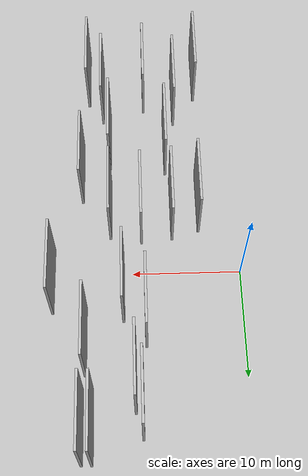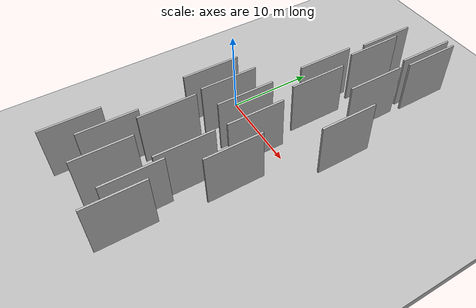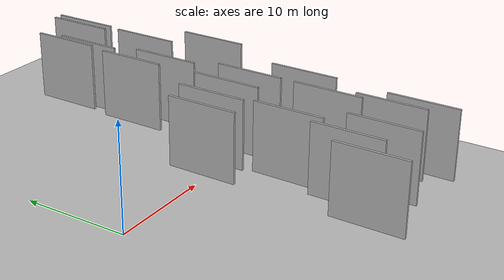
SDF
<?xml version="1.0" encoding="utf-8"?>

<sdf version="1.6">

   <world name="default">

      <gui fullscreen="0">

         <camera name="user_camera">

            <pose>-15 0 4.57585 0 0 0</pose>

            <view_controller>orbit</view_controller>

         </camera>

      </gui>

      <scene>

         <sky>

           <clouds>

             <speed>12</speed>

           </clouds>

         </sky>

         <ambient>0.4 0.4 0.4 1</ambient>

         <background>0.7 0.7 0.7 1</background>

         <shadows>1</shadows>

      </scene>

      <gravity>0 0 -9.8066</gravity>

      <magnetic_field>6e-06 2.3e-05 -4.2e-05</magnetic_field>

      <physics default="0" name="default_physics" type="ode">

         <ode>

            <solver>

               <type>quick</type>

               <iters>10</iters>

               <sor>1.0</sor>

               <use_dynamic_moi_rescaling>0</use_dynamic_moi_rescaling>

            </solver>

            <constraints>

               <cfm>0</cfm>

               <erp>0.2</erp>

               <contact_max_correcting_vel>100</contact_max_correcting_vel>

               <contact_surface_layer>0.001</contact_surface_layer>

            </constraints>

         </ode>

         <max_step_size>0.004</max_step_size>

         <real_time_factor>1</real_time_factor>

         <real_time_update_rate>250</real_time_update_rate>

      </physics>

      <light name="sun" type="directional">

         <cast_shadows>1</cast_shadows>

         <pose>0 0 10 0 0 0</pose>

         <diffuse>0.8 0.8 0.8 1</diffuse>

         <specular>0.2 0.2 0.2 1</specular>

         <attenuation>

            <range>1000</range>

            <constant>0.9</constant>

            <linear>0.01</linear>

            <quadratic>0.001</quadratic>

         </attenuation>

         <direction>-0.5 0.1 -0.9</direction>

      </light>

      <include>

         <name>ground_plane_1</name>

         <uri>model://HANNAS_ground_plane</uri>

         <pose>0 0 0  0 0 0</pose>

      </include>

      <include>

         <name>ground_plane_2</name>

         <uri>model://HANNAS_ground_plane</uri>

         <pose>100 0 0  0 0 0</pose>

      </include>

      <model name="HANNAS_wall_1">

         <static>1</static>

         <pose frame="">8.6702 -17.7167 5.0 0.000000 0.000000 1.570796</pose>

         <link name="link">

            <pose frame="">0 0 3.00 0 0 0</pose>

            <collision name="collision">

               <geometry>

                  <box>

                     <size>6.00 0.2 6.00</size>

                  </box>

               </geometry>

               <max_contacts>10</max_contacts>

               <surface>

                  <contact>

                     <ode/>

                  </contact>

                  <bounce/>

                  <friction>

                     <torsional>

                        <ode/>

                     </torsional>

                     <ode/>

                  </friction>

               </surface>

            </collision>

            <visual name="visual">

               <cast_shadows>0</cast_shadows>

               <geometry>

                  <box>

                     <size>6.00 0.2 6.00</size>

                  </box>

               </geometry>

               <material>

                  <script>

                     <uri>model://HANNAS_wall/materials/scripts</uri>

                     <uri>model://HANNAS_wall/materials/textures</uri>

                     <name>vrc/HANNAS_wall</name>

                  </script>

               </material>

            </visual>

            <self_collide>0</self_collide>

            <enable_wind>0</enable_wind>

            <kinematic>0</kinematic>

         </link>

      </model>

      <model name="HANNAS_wall_2">

         <static>1</static>

         <pose frame="">11.8247 -11.4168 5.0 0.000000 0.000000 1.570796</pose>

         <link name="link">

            <pose frame="">0 0 3.00 0 0 0</pose>

            <collision name="collision">

               <geometry>

                  <box>

                     <size>6.00 0.2 6.00</size>

                  </box>

               </geometry>

               <max_contacts>10</max_contacts>

               <surface>

                  <contact>

                     <ode/>

                  </contact>

                  <bounce/>

                  <friction>

                     <torsional>

                        <ode/>

                     </torsional>

                     <ode/>

                  </friction>

               </surface>

            </collision>

            <visual name="visual">

               <cast_shadows>0</cast_shadows>

               <geometry>

                  <box>

                     <size>6.00 0.2 6.00</size>

                  </box>

               </geometry>

               <material>

                  <script>

                     <uri>model://HANNAS_wall/materials/scripts</uri>

                     <uri>model://HANNAS_wall/materials/textures</uri>

                     <name>vrc/HANNAS_wall</name>

                  </script>

               </material>

            </visual>

            <self_collide>0</self_collide>

            <enable_wind>0</enable_wind>

            <kinematic>0</kinematic>

         </link>

      </model>

      <model name="HANNAS_wall_3">

         <static>1</static>

         <pose frame="">11.8159 -4.2176 5.0 0.000000 0.000000 1.570796</pose>

         <link name="link">

            <pose frame="">0 0 3.00 0 0 0</pose>

            <collision name="collision">

               <geometry>

                  <box>

                     <size>6.00 0.2 6.00</size>

                  </box>

               </geometry>

               <max_contacts>10</max_contacts>

               <surface>

                  <contact>

                     <ode/>

                  </contact>

                  <bounce/>

                  <friction>

                     <torsional>

                        <ode/>

                     </torsional>

                     <ode/>

                  </friction>

               </surface>

            </collision>

            <visual name="visual">

               <cast_shadows>0</cast_shadows>

               <geometry>

                  <box>

                     <size>6.00 0.2 6.00</size>

                  </box>

               </geometry>

               <material>

                  <script>

                     <uri>model://HANNAS_wall/materials/scripts</uri>

                     <uri>model://HANNAS_wall/materials/textures</uri>

                     <name>vrc/HANNAS_wall</name>

                  </script>

               </material>

            </visual>

            <self_collide>0</self_collide>

            <enable_wind>0</enable_wind>

            <kinematic>0</kinematic>

         </link>

      </model>

      <model name="HANNAS_wall_4">

         <static>1</static>

         <pose frame="">14.1455 15.1615 5.0 0.000000 0.000000 1.570796</pose>

         <link name="link">

            <pose frame="">0 0 3.00 0 0 0</pose>

            <collision name="collision">

               <geometry>

                  <box>

                     <size>6.00 0.2 6.00</size>

                  </box>

               </geometry>

               <max_contacts>10</max_contacts>

               <surface>

                  <contact>

                     <ode/>

                  </contact>

                  <bounce/>

                  <friction>

                     <torsional>

                        <ode/>

                     </torsional>

                     <ode/>

                  </friction>

               </surface>

            </collision>

            <visual name="visual">

               <cast_shadows>0</cast_shadows>

               <geometry>

                  <box>

                     <size>6.00 0.2 6.00</size>

                  </box>

               </geometry>

               <material>

                  <script>

                     <uri>model://HANNAS_wall/materials/scripts</uri>

                     <uri>model://HANNAS_wall/materials/textures</uri>

                     <name>vrc/HANNAS_wall</name>

                  </script>

               </material>

            </visual>

            <self_collide>0</self_collide>

            <enable_wind>0</enable_wind>

            <kinematic>0</kinematic>

         </link>

      </model>

      <model name="HANNAS_wall_5">

         <static>1</static>

         <pose frame="">13.9211 8.0993 5.0 0.000000 0.000000 1.570796</pose>

         <link name="link">

            <pose frame="">0 0 3.00 0 0 0</pose>

            <collision name="collision">

               <geometry>

                  <box>

                     <size>6.00 0.2 6.00</size>

                  </box>

               </geometry>

               <max_contacts>10</max_contacts>

               <surface>

                  <contact>

                     <ode/>

                  </contact>

                  <bounce/>

                  <friction>

                     <torsional>

                        <ode/>

                     </torsional>

                     <ode/>

                  </friction>

               </surface>

            </collision>

            <visual name="visual">

               <cast_shadows>0</cast_shadows>

               <geometry>

                  <box>

                     <size>6.00 0.2 6.00</size>

                  </box>

               </geometry>

               <material>

                  <script>

                     <uri>model://HANNAS_wall/materials/scripts</uri>

                     <uri>model://HANNAS_wall/materials/textures</uri>

                     <name>vrc/HANNAS_wall</name>

                  </script>

               </material>

            </visual>

            <self_collide>0</self_collide>

            <enable_wind>0</enable_wind>

            <kinematic>0</kinematic>

         </link>

      </model>

      <model name="HANNAS_wall_6">

         <static>1</static>

         <pose frame="">8.8894 5.7542 5.0 0.000000 0.000000 1.570796</pose>

         <link name="link">

            <pose frame="">0 0 3.00 0 0 0</pose>

            <collision name="collision">

               <geometry>

                  <box>

                     <size>6.00 0.2 6.00</size>

                  </box>

               </geometry>

               <max_contacts>10</max_contacts>

               <surface>

                  <contact>

                     <ode/>

                  </contact>

                  <bounce/>

                  <friction>

                     <torsional>

                        <ode/>

                     </torsional>

                     <ode/>

                  </friction>

               </surface>

            </collision>

            <visual name="visual">

               <cast_shadows>0</cast_shadows>

               <geometry>

                  <box>

                     <size>6.00 0.2 6.00</size>

                  </box>

               </geometry>

               <material>

                  <script>

                     <uri>model://HANNAS_wall/materials/scripts</uri>

                     <uri>model://HANNAS_wall/materials/textures</uri>

                     <name>vrc/HANNAS_wall</name>

                  </script>

               </material>

            </visual>

            <self_collide>0</self_collide>

            <enable_wind>0</enable_wind>

            <kinematic>0</kinematic>

         </link>

      </model>

      <model name="HANNAS_wall_7">

         <static>1</static>

         <pose frame="">4.0963 -4.7700 5.0 0.000000 0.000000 1.570796</pose>

         <link name="link">

            <pose frame="">0 0 3.00 0 0 0</pose>

            <collision name="collision">

               <geometry>

                  <box>

                     <size>6.00 0.2 6.00</size>

                  </box>

               </geometry>

               <max_contacts>10</max_contacts>

               <surface>

                  <contact>

                     <ode/>

                  </contact>

                  <bounce/>

                  <friction>

                     <torsional>

                        <ode/>

                     </torsional>

                     <ode/>

                  </friction>

               </surface>

            </collision>

            <visual name="visual">

               <cast_shadows>0</cast_shadows>

               <geometry>

                  <box>

                     <size>6.00 0.2 6.00</size>

                  </box>

               </geometry>

               <material>

                  <script>

                     <uri>model://HANNAS_wall/materials/scripts</uri>

                     <uri>model://HANNAS_wall/materials/textures</uri>

                     <name>vrc/HANNAS_wall</name>

                  </script>

               </material>

            </visual>

            <self_collide>0</self_collide>

            <enable_wind>0</enable_wind>

            <kinematic>0</kinematic>

         </link>

      </model>

      <model name="HANNAS_wall_8">

         <static>1</static>

         <pose frame="">9.1276 -3.7219 5.0 0.000000 0.000000 1.570796</pose>

         <link name="link">

            <pose frame="">0 0 3.00 0 0 0</pose>

            <collision name="collision">

               <geometry>

                  <box>

                     <size>6.00 0.2 6.00</size>

                  </box>

               </geometry>

               <max_contacts>10</max_contacts>

               <surface>

                  <contact>

                     <ode/>

                  </contact>

                  <bounce/>

                  <friction>

                     <torsional>

                        <ode/>

                     </torsional>

                     <ode/>

                  </friction>

               </surface>

            </collision>

            <visual name="visual">

               <cast_shadows>0</cast_shadows>

               <geometry>

                  <box>

                     <size>6.00 0.2 6.00</size>

                  </box>

               </geometry>

               <material>

                  <script>

                     <uri>model://HANNAS_wall/materials/scripts</uri>

                     <uri>model://HANNAS_wall/materials/textures</uri>

                     <name>vrc/HANNAS_wall</name>

                  </script>

               </material>

            </visual>

            <self_collide>0</self_collide>

            <enable_wind>0</enable_wind>

            <kinematic>0</kinematic>

         </link>

      </model>

      <model name="HANNAS_wall_9">

         <static>1</static>

         <pose frame="">6.8330 -10.7460 5.0 0.000000 0.000000 1.570796</pose>

         <link name="link">

            <pose frame="">0 0 3.00 0 0 0</pose>

            <collision name="collision">

               <geometry>

                  <box>

                     <size>6.00 0.2 6.00</size>

                  </box>

               </geometry>

               <max_contacts>10</max_contacts>

               <surface>

                  <contact>

                     <ode/>

                  </contact>

                  <bounce/>

                  <friction>

                     <torsional>

                        <ode/>

                     </torsional>

                     <ode/>

                  </friction>

               </surface>

            </collision>

            <visual name="visual">

               <cast_shadows>0</cast_shadows>

               <geometry>

                  <box>

                     <size>6.00 0.2 6.00</size>

                  </box>

               </geometry>

               <material>

                  <script>

                     <uri>model://HANNAS_wall/materials/scripts</uri>

                     <uri>model://HANNAS_wall/materials/textures</uri>

                     <name>vrc/HANNAS_wall</name>

                  </script>

               </material>

            </visual>

            <self_collide>0</self_collide>

            <enable_wind>0</enable_wind>

            <kinematic>0</kinematic>

         </link>

      </model>

      <model name="HANNAS_wall_10">

         <static>1</static>

         <pose frame="">13.3306 15.1760 5.0 0.000000 0.000000 1.570796</pose>

         <link name="link">

            <pose frame="">0 0 3.00 0 0 0</pose>

            <collision name="collision">

               <geometry>

                  <box>

                     <size>6.00 0.2 6.00</size>

                  </box>

               </geometry>

               <max_contacts>10</max_contacts>

               <surface>

                  <contact>

                     <ode/>

                  </contact>

                  <bounce/>

                  <friction>

                     <torsional>

                        <ode/>

                     </torsional>

                     <ode/>

                  </friction>

               </surface>

            </collision>

            <visual name="visual">

               <cast_shadows>0</cast_shadows>

               <geometry>

                  <box>

                     <size>6.00 0.2 6.00</size>

                  </box>

               </geometry>

               <material>

                  <script>

                     <uri>model://HANNAS_wall/materials/scripts</uri>

                     <uri>model://HANNAS_wall/materials/textures</uri>

                     <name>vrc/HANNAS_wall</name>

                  </script>

               </material>

            </visual>

            <self_collide>0</self_collide>

            <enable_wind>0</enable_wind>

            <kinematic>0</kinematic>

         </link>

      </model>

      <model name="HANNAS_wall_11">

         <static>1</static>

         <pose frame="">13.8148 -18.5667 5.0 0.000000 0.000000 1.570796</pose>

         <link name="link">

            <pose frame="">0 0 3.00 0 0 0</pose>

            <collision name="collision">

               <geometry>

                  <box>

                     <size>6.00 0.2 6.00</size>

                  </box>

               </geometry>

               <max_contacts>10</max_contacts>

               <surface>

                  <contact>

                     <ode/>

                  </contact>

                  <bounce/>

                  <friction>

                     <torsional>

                        <ode/>

                     </torsional>

                     <ode/>

                  </friction>

               </surface>

            </collision>

            <visual name="visual">

               <cast_shadows>0</cast_shadows>

               <geometry>

                  <box>

                     <size>6.00 0.2 6.00</size>

                  </box>

               </geometry>

               <material>

                  <script>

                     <uri>model://HANNAS_wall/materials/scripts</uri>

                     <uri>model://HANNAS_wall/materials/textures</uri>

                     <name>vrc/HANNAS_wall</name>

                  </script>

               </material>

            </visual>

            <self_collide>0</self_collide>

            <enable_wind>0</enable_wind>

            <kinematic>0</kinematic>

         </link>

      </model>

      <model name="HANNAS_wall_12">

         <static>1</static>

         <pose frame="">10.7604 3.5270 5.0 0.000000 0.000000 1.570796</pose>

         <link name="link">

            <pose frame="">0 0 3.00 0 0 0</pose>

            <collision name="collision">

               <geometry>

                  <box>

                     <size>6.00 0.2 6.00</size>

                  </box>

               </geometry>

               <max_contacts>10</max_contacts>

               <surface>

                  <contact>

                     <ode/>

                  </contact>

                  <bounce/>

                  <friction>

                     <torsional>

                        <ode/>

                     </torsional>

                     <ode/>

                  </friction>

               </surface>

            </collision>

            <visual name="visual">

               <cast_shadows>0</cast_shadows>

               <geometry>

                  <box>

                     <size>6.00 0.2 6.00</size>

                  </box>

               </geometry>

               <material>

                  <script>

                     <uri>model://HANNAS_wall/materials/scripts</uri>

                     <uri>model://HANNAS_wall/materials/textures</uri>

                     <name>vrc/HANNAS_wall</name>

                  </script>

               </material>

            </visual>

            <self_collide>0</self_collide>

            <enable_wind>0</enable_wind>

            <kinematic>0</kinematic>

         </link>

      </model>

      <model name="HANNAS_wall_13">

         <static>1</static>

         <pose frame="">6.4466 -4.0645 5.0 0.000000 0.000000 1.570796</pose>

         <link name="link">

            <pose frame="">0 0 3.00 0 0 0</pose>

            <collision name="collision">

               <geometry>

                  <box>

                     <size>6.00 0.2 6.00</size>

                  </box>

               </geometry>

               <max_contacts>10</max_contacts>

               <surface>

                  <contact>

                     <ode/>

                  </contact>

                  <bounce/>

                  <friction>

                     <torsional>

                        <ode/>

                     </torsional>

                     <ode/>

                  </friction>

               </surface>

            </collision>

            <visual name="visual">

               <cast_shadows>0</cast_shadows>

               <geometry>

                  <box>

                     <size>6.00 0.2 6.00</size>

                  </box>

               </geometry>

               <material>

                  <script>

                     <uri>model://HANNAS_wall/materials/scripts</uri>

                     <uri>model://HANNAS_wall/materials/textures</uri>

                     <name>vrc/HANNAS_wall</name>

                  </script>

               </material>

            </visual>

            <self_collide>0</self_collide>

            <enable_wind>0</enable_wind>

            <kinematic>0</kinematic>

         </link>

      </model>

      <model name="HANNAS_wall_14">

         <static>1</static>

         <pose frame="">14.2949 -7.9266 5.0 0.000000 0.000000 1.570796</pose>

         <link name="link">

            <pose frame="">0 0 3.00 0 0 0</pose>

            <collision name="collision">

               <geometry>

                  <box>

                     <size>6.00 0.2 6.00</size>

                  </box>

               </geometry>

               <max_contacts>10</max_contacts>

               <surface>

                  <contact>

                     <ode/>

                  </contact>

                  <bounce/>

                  <friction>

                     <torsional>

                        <ode/>

                     </torsional>

                     <ode/>

                  </friction>

               </surface>

            </collision>

            <visual name="visual">

               <cast_shadows>0</cast_shadows>

               <geometry>

                  <box>

                     <size>6.00 0.2 6.00</size>

                  </box>

               </geometry>

               <material>

                  <script>

                     <uri>model://HANNAS_wall/materials/scripts</uri>

                     <uri>model://HANNAS_wall/materials/textures</uri>

                     <name>vrc/HANNAS_wall</name>

                  </script>

               </material>

            </visual>

            <self_collide>0</self_collide>

            <enable_wind>0</enable_wind>

            <kinematic>0</kinematic>

         </link>

      </model>

      <model name="HANNAS_wall_15">

         <static>1</static>

         <pose frame="">9.8549 11.2515 5.0 0.000000 0.000000 1.570796</pose>

         <link name="link">

            <pose frame="">0 0 3.00 0 0 0</pose>

            <collision name="collision">

               <geometry>

                  <box>

                     <size>6.00 0.2 6.00</size>

                  </box>

               </geometry>

               <max_contacts>10</max_contacts>

               <surface>

                  <contact>

                     <ode/>

                  </contact>

                  <bounce/>

                  <friction>

                     <torsional>

                        <ode/>

                     </torsional>

                     <ode/>

                  </friction>

               </surface>

            </collision>

            <visual name="visual">

               <cast_shadows>0</cast_shadows>

               <geometry>

                  <box>

                     <size>6.00 0.2 6.00</size>

                  </box>

               </geometry>

               <material>

                  <script>

                     <uri>model://HANNAS_wall/materials/scripts</uri>

                     <uri>model://HANNAS_wall/materials/textures</uri>

                     <name>vrc/HANNAS_wall</name>

                  </script>

               </material>

            </visual>

            <self_collide>0</self_collide>

            <enable_wind>0</enable_wind>

            <kinematic>0</kinematic>

         </link>

      </model>

      <model name="HANNAS_wall_16">

         <static>1</static>

         <pose frame="">9.2997 13.3296 5.0 0.000000 0.000000 1.570796</pose>

         <link name="link">

            <pose frame="">0 0 3.00 0 0 0</pose>

            <collision name="collision">

               <geometry>

                  <box>

                     <size>6.00 0.2 6.00</size>

                  </box>

               </geometry>

               <max_contacts>10</max_contacts>

               <surface>

                  <contact>

                     <ode/>

                  </contact>

                  <bounce/>

                  <friction>

                     <torsional>

                        <ode/>

                     </torsional>

                     <ode/>

                  </friction>

               </surface>

            </collision>

            <visual name="visual">

               <cast_shadows>0</cast_shadows>

               <geometry>

                  <box>

                     <size>6.00 0.2 6.00</size>

                  </box>

               </geometry>

               <material>

                  <script>

                     <uri>model://HANNAS_wall/materials/scripts</uri>

                     <uri>model://HANNAS_wall/materials/textures</uri>

                     <name>vrc/HANNAS_wall</name>

                  </script>

               </material>

            </visual>

            <self_collide>0</self_collide>

            <enable_wind>0</enable_wind>

            <kinematic>0</kinematic>

         </link>

      </model>

      <model name="HANNAS_wall_17">

         <static>1</static>

         <pose frame="">12.4734 -16.5348 5.0 0.000000 0.000000 1.570796</pose>

         <link name="link">

            <pose frame="">0 0 3.00 0 0 0</pose>

            <collision name="collision">

               <geometry>

                  <box>

                     <size>6.00 0.2 6.00</size>

                  </box>

               </geometry>

               <max_contacts>10</max_contacts>

               <surface>

                  <contact>

                     <ode/>

                  </contact>

                  <bounce/>

                  <friction>

                     <torsional>

                        <ode/>

                     </torsional>

                     <ode/>

                  </friction>

               </surface>

            </collision>

            <visual name="visual">

               <cast_shadows>0</cast_shadows>

               <geometry>

                  <box>

                     <size>6.00 0.2 6.00</size>

                  </box>

               </geometry>

               <material>

                  <script>

                     <uri>model://HANNAS_wall/materials/scripts</uri>

                     <uri>model://HANNAS_wall/materials/textures</uri>

                     <name>vrc/HANNAS_wall</name>

                  </script>

               </material>

            </visual>

            <self_collide>0</self_collide>

            <enable_wind>0</enable_wind>

            <kinematic>0</kinematic>

         </link>

      </model>

      <model name="HANNAS_wall_18">

         <static>1</static>

         <pose frame="">16.7301 2.6571 5.0 0.000000 0.000000 1.570796</pose>

         <link name="link">

            <pose frame="">0 0 3.00 0 0 0</pose>

            <collision name="collision">

               <geometry>

                  <box>

                     <size>6.00 0.2 6.00</size>

                  </box>

               </geometry>

               <max_contacts>10</max_contacts>

               <surface>

                  <contact>

                     <ode/>

                  </contact>

                  <bounce/>

                  <friction>

                     <torsional>

                        <ode/>

                     </torsional>

                     <ode/>

                  </friction>

               </surface>

            </collision>

            <visual name="visual">

               <cast_shadows>0</cast_shadows>

               <geometry>

                  <box>

                     <size>6.00 0.2 6.00</size>

                  </box>

               </geometry>

               <material>

                  <script>

                     <uri>model://HANNAS_wall/materials/scripts</uri>

                     <uri>model://HANNAS_wall/materials/textures</uri>

                     <name>vrc/HANNAS_wall</name>

                  </script>

               </material>

            </visual>

            <self_collide>0</self_collide>

            <enable_wind>0</enable_wind>

            <kinematic>0</kinematic>

         </link>

      </model>

      <model name="HANNAS_wall_19">

         <static>1</static>

         <pose frame="">5.9075 -16.1757 5.0 0.000000 0.000000 1.570796</pose>

         <link name="link">

            <pose frame="">0 0 3.00 0 0 0</pose>

            <collision name="collision">

               <geometry>

                  <box>

                     <size>6.00 0.2 6.00</size>

                  </box>

               </geometry>

               <max_contacts>10</max_contacts>

               <surface>

                  <contact>

                     <ode/>

                  </contact>

                  <bounce/>

                  <friction>

                     <torsional>

                        <ode/>

                     </torsional>

                     <ode/>

                  </friction>

               </surface>

            </collision>

            <visual name="visual">

               <cast_shadows>0</cast_shadows>

               <geometry>

                  <box>

                     <size>6.00 0.2 6.00</size>

                  </box>

               </geometry>

               <material>

                  <script>

                     <uri>model://HANNAS_wall/materials/scripts</uri>

                     <uri>model://HANNAS_wall/materials/textures</uri>

                     <name>vrc/HANNAS_wall</name>

                  </script>

               </material>

            </visual>

            <self_collide>0</self_collide>

            <enable_wind>0</enable_wind>

            <kinematic>0</kinematic>

         </link>

      </model>

      <model name="HANNAS_wall_20">

         <static>1</static>

         <pose frame="">3.8753 -18.9687 5.0 0.000000 0.000000 1.570796</pose>

         <link name="link">

            <pose frame="">0 0 3.00 0 0 0</pose>

            <collision name="collision">

               <geometry>

                  <box>

                     <size>6.00 0.2 6.00</size>

                  </box>

               </geometry>

               <max_contacts>10</max_contacts>

               <surface>

                  <contact>

                     <ode/>

                  </contact>

                  <bounce/>

                  <friction>

                     <torsional>

                        <ode/>

                     </torsional>

                     <ode/>

                  </friction>

               </surface>

            </collision>

            <visual name="visual">

               <cast_shadows>0</cast_shadows>

               <geometry>

                  <box>

                     <size>6.00 0.2 6.00</size>

                  </box>

               </geometry>

               <material>

                  <script>

                     <uri>model://HANNAS_wall/materials/scripts</uri>

                     <uri>model://HANNAS_wall/materials/textures</uri>

                     <name>vrc/HANNAS_wall</name>

                  </script>

               </material>

            </visual>

            <self_collide>0</self_collide>

            <enable_wind>0</enable_wind>

            <kinematic>0</kinematic>

         </link>

      </model>

   </world>

</sdf>

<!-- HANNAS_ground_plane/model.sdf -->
<sdf version="1.4">
<model name="HANNAS_ground_plane">
  <static>true</static>
    <link name="link">
      <collision name="collision">
        <geometry>
          <plane>
            <normal>0 0 1</normal>
            <size>1000 1000</size>
          </plane>
        </geometry>
        <surface>
          <friction>
            <ode>
              <mu>100</mu>
              <mu2>50</mu2>
            </ode>
          </friction>
        </surface>
      </collision>
      <visual name="visual">
        <cast_shadows>false</cast_shadows>
        <geometry>
          <plane>
            <normal>0 0 1</normal>
            <size>1000 1000</size>
          </plane>
        </geometry>
        <material>
          <script>
            <uri>model://HANNAS_ground_plane/materials/scripts/HANNAS_ground_plane.material</uri>
	    <uri>model://HANNAS_ground_plane/materials/textures</uri>
            <name>HANNASGroundPlane/Image</name>
          </script>
        </material>
      </visual>
    </link>
  </model>
</sdf>
